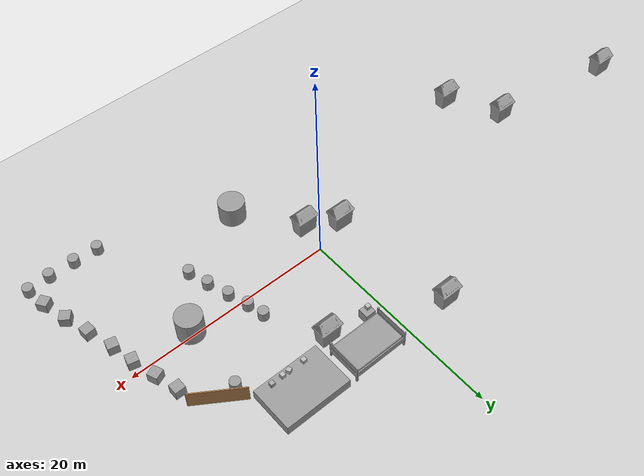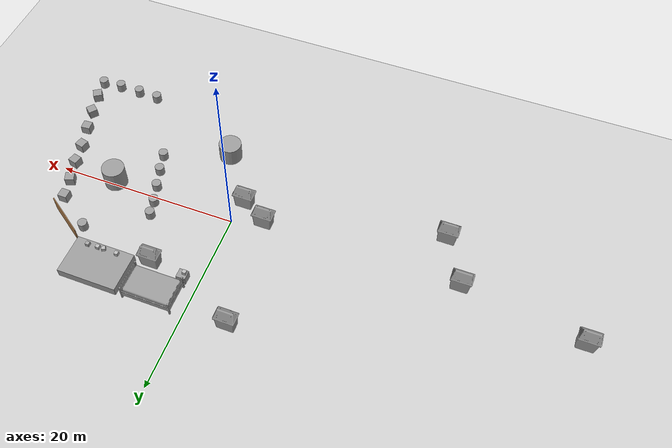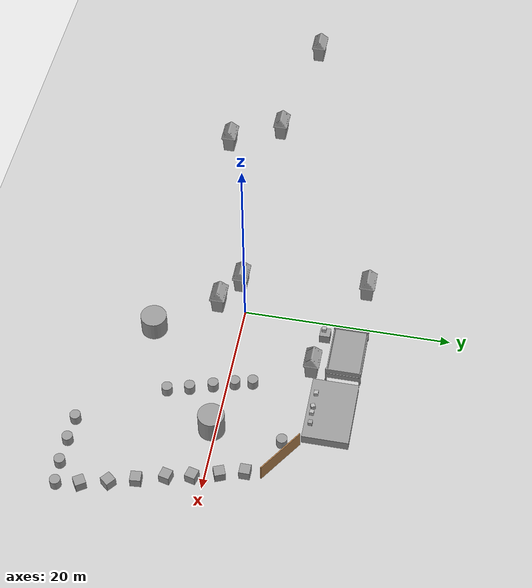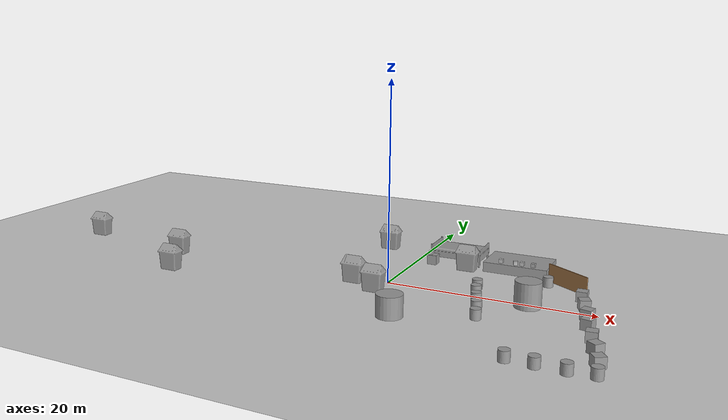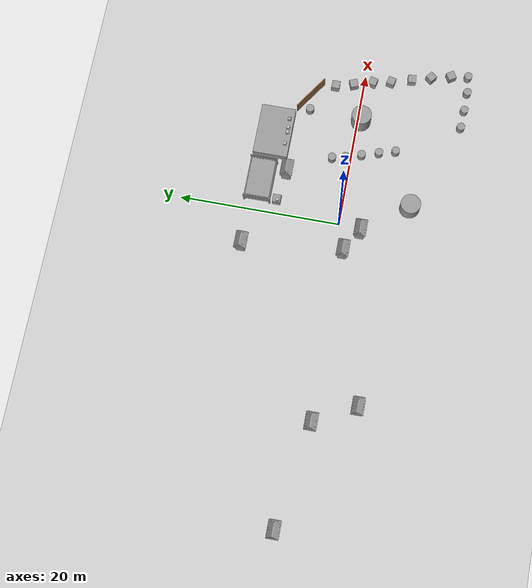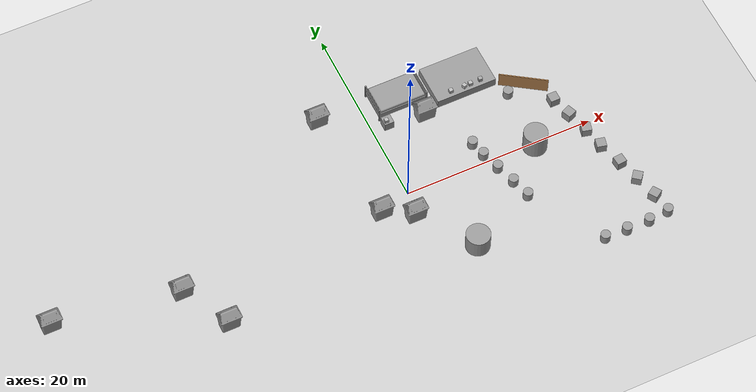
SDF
<sdf version="1.7">
 <world name="default">
  <model name="ground_plane">
   <static>1</static>
   <link name="link">
    <collision name="collision">
     <geometry><plane><normal>0 0 1</normal><size>100 100</size></plane></geometry>
     <surface>
      <contact><collide_bitmask>65535</collide_bitmask></contact>
      <friction><ode><mu>100</mu><mu2>50</mu2></ode></friction>
     </surface>
    </collision>
    <visual name="visual">
     <cast_shadows>0</cast_shadows>
     <geometry><plane><normal>0 0 1</normal><size>100 100</size></plane></geometry>
     <material>
      <script><uri>file://media/materials/scripts/gazebo.material</uri><name>Gazebo/Grey</name></script>
     </material>
    </visual>
   </link>
  </model>
  <model name="tree">
   <link name="link_12">
    <inertial>
     <mass>1</mass>
     <inertia>
      <ixx>0.166667</ixx>
      <ixy>0</ixy>
      <ixz>0</ixz>
      <iyy>0.166667</iyy>
      <iyz>0</iyz>
      <izz>0.166667</izz>
     </inertia>
    </inertial>
    <pose>2.99776 21.1634 0 0 -0 0</pose>
    <visual name="visual">
     <geometry>
      <mesh><uri>/home/teera/dev_ws/src/tratsah/meshes/dae/trash_can.dae</uri><scale>1 1 1</scale></mesh>
     </geometry>
     <material>
      <lighting>1</lighting>
      <script><uri>file://media/materials/scripts/gazebo.material</uri><name>Gazebo/Grey</name></script>
      <shader type="pixel"/>
     </material>
    </visual>
    <collision name="collision">
     <geometry>
      <mesh><uri>/home/teera/dev_ws/src/tratsah/meshes/dae/trash_can.dae</uri><scale>1 1 1</scale></mesh>
     </geometry>
     <surface>
      <friction>
       <ode><mu>1</mu><mu2>1</mu2><fdir1>0 0 0</fdir1><slip1>0</slip1><slip2>0</slip2></ode>
       <torsional>
        <coefficient>1</coefficient>
        <patch_radius>0</patch_radius>
        <surface_radius>0</surface_radius>
        <use_patch_radius>1</use_patch_radius>
        <ode><slip>0</slip></ode>
       </torsional>
      </friction>
      <bounce><restitution_coefficient>0</restitution_coefficient><threshold>1e+06</threshold></bounce>
      <contact>
       <collide_without_contact>0</collide_without_contact>
       <collide_without_contact_bitmask>1</collide_without_contact_bitmask>
       <collide_bitmask>1</collide_bitmask>
       <ode>
        <soft_cfm>0</soft_cfm>
        <soft_erp>0.2</soft_erp>
        <kp>1e+13</kp>
        <kd>1</kd>
        <max_vel>0.01</max_vel>
        <min_depth>0</min_depth>
       </ode>
       <bullet>
        <split_impulse>1</split_impulse>
        <split_impulse_penetration_threshold>-0.01</split_impulse_penetration_threshold>
        <soft_cfm>0</soft_cfm>
        <soft_erp>0.2</soft_erp>
        <kp>1e+13</kp>
        <kd>1</kd>
       </bullet>
      </contact>
     </surface>
    </collision>
   </link>
   <model name="trash_can">
    <link name="link_12">
     <inertial>
      <mass>1</mass>
      <inertia>
       <ixx>0.166667</ixx>
       <ixy>0</ixy>
       <ixz>0</ixz>
       <iyy>0.166667</iyy>
       <iyz>0</iyz>
       <izz>0.166667</izz>
      </inertia>
     </inertial>
     <pose>4e-06 2.8e-05 0 0 -0 0</pose>
     <visual name="visual">
      <geometry>
       <mesh><uri>/home/teera/dev_ws/src/tratsah/meshes/dae/trash_can.dae</uri><scale>1 1 1</scale></mesh>
      </geometry>
      <material>
       <lighting>1</lighting>
       <script><uri>file://media/materials/scripts/gazebo.material</uri><name>Gazebo/Grey</name></script>
       <shader type="pixel"/>
      </material>
     </visual>
     <collision name="collision">
      <geometry>
       <mesh><uri>/home/teera/dev_ws/src/tratsah/meshes/dae/trash_can.dae</uri><scale>1 1 1</scale></mesh>
      </geometry>
      <surface>
       <friction>
        <ode><mu>1</mu><mu2>1</mu2><fdir1>0 0 0</fdir1><slip1>0</slip1><slip2>0</slip2></ode>
        <torsional>
         <coefficient>1</coefficient>
         <patch_radius>0</patch_radius>
         <surface_radius>0</surface_radius>
         <use_patch_radius>1</use_patch_radius>
         <ode><slip>0</slip></ode>
        </torsional>
       </friction>
       <bounce><restitution_coefficient>0</restitution_coefficient><threshold>1e+06</threshold></bounce>
       <contact>
        <collide_without_contact>0</collide_without_contact>
        <collide_without_contact_bitmask>1</collide_without_contact_bitmask>
        <collide_bitmask>1</collide_bitmask>
        <ode>
         <soft_cfm>0</soft_cfm>
         <soft_erp>0.2</soft_erp>
         <kp>1e+13</kp>
         <kd>1</kd>
         <max_vel>0.01</max_vel>
         <min_depth>0</min_depth>
        </ode>
        <bullet>
         <split_impulse>1</split_impulse>
         <split_impulse_penetration_threshold>-0.01</split_impulse_penetration_threshold>
         <soft_cfm>0</soft_cfm>
         <soft_erp>0.2</soft_erp>
         <kp>1e+13</kp>
         <kd>1</kd>
        </bullet>
       </contact>
      </surface>
     </collision>
    </link>
    <static>0</static>
    <pose>13.0667 17.3666 0 0 -0 0</pose>
   </model>
   <model name="trash_can_0">
    <link name="link_12">
     <inertial>
      <mass>1</mass>
      <inertia>
       <ixx>0.166667</ixx>
       <ixy>0</ixy>
       <ixz>0</ixz>
       <iyy>0.166667</iyy>
       <iyz>0</iyz>
       <izz>0.166667</izz>
      </inertia>
     </inertial>
     <pose>4e-06 2.8e-05 0 0 -0 0</pose>
     <visual name="visual">
      <geometry>
       <mesh><uri>/home/teera/dev_ws/src/tratsah/meshes/dae/trash_can.dae</uri><scale>1 1 1</scale></mesh>
      </geometry>
      <material>
       <lighting>1</lighting>
       <script><uri>file://media/materials/scripts/gazebo.material</uri><name>Gazebo/Grey</name></script>
       <shader type="pixel"/>
      </material>
     </visual>
     <collision name="collision">
      <geometry>
       <mesh><uri>/home/teera/dev_ws/src/tratsah/meshes/dae/trash_can.dae</uri><scale>1 1 1</scale></mesh>
      </geometry>
      <surface>
       <friction>
        <ode><mu>1</mu><mu2>1</mu2><fdir1>0 0 0</fdir1><slip1>0</slip1><slip2>0</slip2></ode>
        <torsional>
         <coefficient>1</coefficient>
         <patch_radius>0</patch_radius>
         <surface_radius>0</surface_radius>
         <use_patch_radius>1</use_patch_radius>
         <ode><slip>0</slip></ode>
        </torsional>
       </friction>
       <bounce><restitution_coefficient>0</restitution_coefficient><threshold>1e+06</threshold></bounce>
       <contact>
        <collide_without_contact>0</collide_without_contact>
        <collide_without_contact_bitmask>1</collide_without_contact_bitmask>
        <collide_bitmask>1</collide_bitmask>
        <ode>
         <soft_cfm>0</soft_cfm>
         <soft_erp>0.2</soft_erp>
         <kp>1e+13</kp>
         <kd>1</kd>
         <max_vel>0.01</max_vel>
         <min_depth>0</min_depth>
        </ode>
        <bullet>
         <split_impulse>1</split_impulse>
         <split_impulse_penetration_threshold>-0.01</split_impulse_penetration_threshold>
         <soft_cfm>0</soft_cfm>
         <soft_erp>0.2</soft_erp>
         <kp>1e+13</kp>
         <kd>1</kd>
        </bullet>
       </contact>
      </surface>
     </collision>
    </link>
    <static>0</static>
    <pose>-14.3091 3.77436 0 0 -0 0</pose>
   </model>
   <model name="trash_can_1">
    <link name="link_12">
     <inertial>
      <mass>1</mass>
      <inertia>
       <ixx>0.166667</ixx>
       <ixy>0</ixy>
       <ixz>0</ixz>
       <iyy>0.166667</iyy>
       <iyz>0</iyz>
       <izz>0.166667</izz>
      </inertia>
     </inertial>
     <pose>4e-06 2.8e-05 0 0 -0 0</pose>
     <visual name="visual">
      <geometry>
       <mesh><uri>/home/teera/dev_ws/src/tratsah/meshes/dae/trash_can.dae</uri><scale>1 1 1</scale></mesh>
      </geometry>
      <material>
       <lighting>1</lighting>
       <script><uri>file://media/materials/scripts/gazebo.material</uri><name>Gazebo/Grey</name></script>
       <shader type="pixel"/>
      </material>
     </visual>
     <collision name="collision">
      <geometry>
       <mesh><uri>/home/teera/dev_ws/src/tratsah/meshes/dae/trash_can.dae</uri><scale>1 1 1</scale></mesh>
      </geometry>
      <surface>
       <friction>
        <ode><mu>1</mu><mu2>1</mu2><fdir1>0 0 0</fdir1><slip1>0</slip1><slip2>0</slip2></ode>
        <torsional>
         <coefficient>1</coefficient>
         <patch_radius>0</patch_radius>
         <surface_radius>0</surface_radius>
         <use_patch_radius>1</use_patch_radius>
         <ode><slip>0</slip></ode>
        </torsional>
       </friction>
       <bounce><restitution_coefficient>0</restitution_coefficient><threshold>1e+06</threshold></bounce>
       <contact>
        <collide_without_contact>0</collide_without_contact>
        <collide_without_contact_bitmask>1</collide_without_contact_bitmask>
        <collide_bitmask>1</collide_bitmask>
        <ode>
         <soft_cfm>0</soft_cfm>
         <soft_erp>0.2</soft_erp>
         <kp>1e+13</kp>
         <kd>1</kd>
         <max_vel>0.01</max_vel>
         <min_depth>0</min_depth>
        </ode>
        <bullet>
         <split_impulse>1</split_impulse>
         <split_impulse_penetration_threshold>-0.01</split_impulse_penetration_threshold>
         <soft_cfm>0</soft_cfm>
         <soft_erp>0.2</soft_erp>
         <kp>1e+13</kp>
         <kd>1</kd>
        </bullet>
       </contact>
      </surface>
     </collision>
    </link>
    <static>0</static>
    <pose>7.06906 7.11266 0 0 -0 0</pose>
   </model>
   <model name="trash_can_2">
    <link name="link_12">
     <inertial>
      <mass>1</mass>
      <inertia>
       <ixx>0.166667</ixx>
       <ixy>0</ixy>
       <ixz>0</ixz>
       <iyy>0.166667</iyy>
       <iyz>0</iyz>
       <izz>0.166667</izz>
      </inertia>
     </inertial>
     <pose>4e-06 2.8e-05 0 0 -0 0</pose>
     <visual name="visual">
      <geometry>
       <mesh><uri>/home/teera/dev_ws/src/tratsah/meshes/dae/trash_can.dae</uri><scale>1 1 1</scale></mesh>
      </geometry>
      <material>
       <lighting>1</lighting>
       <script><uri>file://media/materials/scripts/gazebo.material</uri><name>Gazebo/Grey</name></script>
       <shader type="pixel"/>
      </material>
     </visual>
     <collision name="collision">
      <geometry>
       <mesh><uri>/home/teera/dev_ws/src/tratsah/meshes/dae/trash_can.dae</uri><scale>1 1 1</scale></mesh>
      </geometry>
      <surface>
       <friction>
        <ode><mu>1</mu><mu2>1</mu2><fdir1>0 0 0</fdir1><slip1>0</slip1><slip2>0</slip2></ode>
        <torsional>
         <coefficient>1</coefficient>
         <patch_radius>0</patch_radius>
         <surface_radius>0</surface_radius>
         <use_patch_radius>1</use_patch_radius>
         <ode><slip>0</slip></ode>
        </torsional>
       </friction>
       <bounce><restitution_coefficient>0</restitution_coefficient><threshold>1e+06</threshold></bounce>
       <contact>
        <collide_without_contact>0</collide_without_contact>
        <collide_without_contact_bitmask>1</collide_without_contact_bitmask>
        <collide_bitmask>1</collide_bitmask>
        <ode>
         <soft_cfm>0</soft_cfm>
         <soft_erp>0.2</soft_erp>
         <kp>1e+13</kp>
         <kd>1</kd>
         <max_vel>0.01</max_vel>
         <min_depth>0</min_depth>
        </ode>
        <bullet>
         <split_impulse>1</split_impulse>
         <split_impulse_penetration_threshold>-0.01</split_impulse_penetration_threshold>
         <soft_cfm>0</soft_cfm>
         <soft_erp>0.2</soft_erp>
         <kp>1e+13</kp>
         <kd>1</kd>
        </bullet>
       </contact>
      </surface>
     </collision>
    </link>
    <static>0</static>
    <pose>-17.0093 8.86572 0 0 -0 0</pose>
   </model>
   <model name="trash_can_3">
    <link name="link_12">
     <inertial>
      <mass>1</mass>
      <inertia>
       <ixx>0.166667</ixx>
       <ixy>0</ixy>
       <ixz>0</ixz>
       <iyy>0.166667</iyy>
       <iyz>0</iyz>
       <izz>0.166667</izz>
      </inertia>
     </inertial>
     <pose>4e-06 2.8e-05 0 0 -0 0</pose>
     <visual name="visual">
      <geometry>
       <mesh><uri>/home/teera/dev_ws/src/tratsah/meshes/dae/trash_can.dae</uri><scale>1 1 1</scale></mesh>
      </geometry>
      <material>
       <lighting>1</lighting>
       <script><uri>file://media/materials/scripts/gazebo.material</uri><name>Gazebo/Grey</name></script>
       <shader type="pixel"/>
      </material>
     </visual>
     <collision name="collision">
      <geometry>
       <mesh><uri>/home/teera/dev_ws/src/tratsah/meshes/dae/trash_can.dae</uri><scale>1 1 1</scale></mesh>
      </geometry>
      <surface>
       <friction>
        <ode><mu>1</mu><mu2>1</mu2><fdir1>0 0 0</fdir1><slip1>0</slip1><slip2>0</slip2></ode>
        <torsional>
         <coefficient>1</coefficient>
         <patch_radius>0</patch_radius>
         <surface_radius>0</surface_radius>
         <use_patch_radius>1</use_patch_radius>
         <ode><slip>0</slip></ode>
        </torsional>
       </friction>
       <bounce><restitution_coefficient>0</restitution_coefficient><threshold>1e+06</threshold></bounce>
       <contact>
        <collide_without_contact>0</collide_without_contact>
        <collide_without_contact_bitmask>1</collide_without_contact_bitmask>
        <collide_bitmask>1</collide_bitmask>
        <ode>
         <soft_cfm>0</soft_cfm>
         <soft_erp>0.2</soft_erp>
         <kp>1e+13</kp>
         <kd>1</kd>
         <max_vel>0.01</max_vel>
         <min_depth>0</min_depth>
        </ode>
        <bullet>
         <split_impulse>1</split_impulse>
         <split_impulse_penetration_threshold>-0.01</split_impulse_penetration_threshold>
         <soft_cfm>0</soft_cfm>
         <soft_erp>0.2</soft_erp>
         <kp>1e+13</kp>
         <kd>1</kd>
        </bullet>
       </contact>
      </surface>
     </collision>
    </link>
    <static>0</static>
    <pose>4.20413 8.77388 0 0 -0 0</pose>
   </model>
   <model name="trash_can_4">
    <link name="link_12">
     <inertial>
      <mass>1</mass>
      <inertia>
       <ixx>0.166667</ixx>
       <ixy>0</ixy>
       <ixz>0</ixz>
       <iyy>0.166667</iyy>
       <iyz>0</iyz>
       <izz>0.166667</izz>
      </inertia>
     </inertial>
     <pose>4e-06 2.8e-05 0 0 -0 0</pose>
     <visual name="visual">
      <geometry>
       <mesh><uri>/home/teera/dev_ws/src/tratsah/meshes/dae/trash_can.dae</uri><scale>1 1 1</scale></mesh>
      </geometry>
      <material>
       <lighting>1</lighting>
       <script><uri>file://media/materials/scripts/gazebo.material</uri><name>Gazebo/Grey</name></script>
       <shader type="pixel"/>
      </material>
     </visual>
     <collision name="collision">
      <geometry>
       <mesh><uri>/home/teera/dev_ws/src/tratsah/meshes/dae/trash_can.dae</uri><scale>1 1 1</scale></mesh>
      </geometry>
      <surface>
       <friction>
        <ode><mu>1</mu><mu2>1</mu2><fdir1>0 0 0</fdir1><slip1>0</slip1><slip2>0</slip2></ode>
        <torsional>
         <coefficient>1</coefficient>
         <patch_radius>0</patch_radius>
         <surface_radius>0</surface_radius>
         <use_patch_radius>1</use_patch_radius>
         <ode><slip>0</slip></ode>
        </torsional>
       </friction>
       <bounce><restitution_coefficient>0</restitution_coefficient><threshold>1e+06</threshold></bounce>
       <contact>
        <collide_without_contact>0</collide_without_contact>
        <collide_without_contact_bitmask>1</collide_without_contact_bitmask>
        <collide_bitmask>1</collide_bitmask>
        <ode>
         <soft_cfm>0</soft_cfm>
         <soft_erp>0.2</soft_erp>
         <kp>1e+13</kp>
         <kd>1</kd>
         <max_vel>0.01</max_vel>
         <min_depth>0</min_depth>
        </ode>
        <bullet>
         <split_impulse>1</split_impulse>
         <split_impulse_penetration_threshold>-0.01</split_impulse_penetration_threshold>
         <soft_cfm>0</soft_cfm>
         <soft_erp>0.2</soft_erp>
         <kp>1e+13</kp>
         <kd>1</kd>
        </bullet>
       </contact>
      </surface>
     </collision>
    </link>
    <static>0</static>
    <pose>-29.8163 10.8728 0 0 -0 0</pose>
   </model>
   <static>0</static>
   <pose>-7.52959 -9.8007 0.007877 -0 -0 -0</pose>
  </model>
  <model name="blue_box">
   <model name="blue_box">
    <link name="new_link">
     <visual name="top_visual">
      <geometry><mesh><uri>model://blue_box/meshes/blue_box.dae</uri></mesh></geometry>
     </visual>
     <collision name="collision">
      <geometry><box><size>0.4 0.4 0.4</size></box></geometry>
      <origin xyz="0 0 0" rpy="0 0 0"/>
     </collision>
     <inertial>
      <mass>1</mass>
      <inertia><ixx>0.01</ixx><ixy>0</ixy><ixz>0</ixz><iyy>0.01</iyy><iyz>0</iyz><izz>0.01</izz></inertia>
     </inertial>
    </link>
   </model>
   <static>0</static>
   <pose>1.50463 8.00874 1.2 -3.4e-05 1.2e-05 -0.029</pose>
  </model>
  <model name="blue_box_0">
   <link name="new_link">
    <visual name="top_visual">
     <geometry><mesh><uri>model://blue_box/meshes/blue_box.dae</uri></mesh></geometry>
    </visual>
    <collision name="collision">
     <geometry><box><size>0.4 0.4 0.4</size></box></geometry>
     <origin xyz="0 0 0" rpy="0 0 0"/>
    </collision>
    <inertial>
     <mass>1</mass>
     <inertia><ixx>0.01</ixx><ixy>0</ixy><ixz>0</ixz><iyy>0.01</iyy><iyz>0</iyz><izz>0.01</izz></inertia>
    </inertial>
   </link>
   <pose>8.87755 8.46569 1.2 2.1e-05 -0 0.023989</pose>
  </model>
  <model name="green_box_0">
   <link name="new_link">
    <visual name="top_visual">
     <geometry><mesh><uri>model://green_box/meshes/green_box.dae</uri><scale>1 1 1</scale></mesh></geometry>
    </visual>
    <collision name="collision">
     <geometry><box><size>0.4 0.4 0.4</size></box></geometry>
     <origin xyz="0 0 0" rpy="0 0 0"/>
    </collision>
    <inertial>
     <mass>1</mass>
     <inertia><ixx>0.01</ixx><ixy>0</ixy><ixz>0</ixz><iyy>0.01</iyy><iyz>0</iyz><izz>0.01</izz></inertia>
    </inertial>
   </link>
   <pose>10.3679 8.41236 1.2 2.1e-05 -0 0.409241</pose>
  </model>
  <model name="green_box_1">
   <link name="new_link">
    <visual name="top_visual">
     <geometry><mesh><uri>model://red_box/meshes/red_box.dae</uri></mesh></geometry>
    </visual>
    <collision name="collision">
     <geometry><box><size>0.4 0.4 0.4</size></box></geometry>
     <origin xyz="0 0 0" rpy="0 0 0"/>
    </collision>
    <inertial>
     <mass>1</mass>
     <inertia><ixx>0.01</ixx><ixy>0</ixy><ixz>0</ixz><iyy>0.01</iyy><iyz>0</iyz><izz>0.01</izz></inertia>
    </inertial>
   </link>
   <pose>12.1566 8.47956 1.19999 0 2.4e-05 -0.042184</pose>
  </model>
  <model name="blue_box_1">
   <link name="new_link">
    <visual name="top_visual">
     <geometry><mesh><uri>model://blue_box/meshes/blue_box.dae</uri></mesh></geometry>
    </visual>
    <collision name="collision">
     <geometry><box><size>0.4 0.4 0.4</size></box></geometry>
     <origin xyz="0 0 0" rpy="0 0 0"/>
    </collision>
    <inertial>
     <mass>1</mass>
     <inertia><ixx>0.01</ixx><ixy>0</ixy><ixz>0</ixz><iyy>0.01</iyy><iyz>0</iyz><izz>0.01</izz></inertia>
    </inertial>
   </link>
   <pose>11.0299 8.42962 1.2 2.2e-05 0 -0.021269</pose>
  </model>
  <model name="unit_box_1">
   <link name="link">
    <inertial>
     <mass>100</mass>
     <inertia><ixx>164.686</ixx><ixy>0</ixy><ixz>0</ixz><iyy>354.534</iyy><iyz>0</iyz><izz>502.553</izz></inertia>
    </inertial>
    <visual name="visual">
     <geometry><box><size>6.44547 4.33155 1</size></box></geometry>
     <material>
      <script><name>Gazebo/Grey</name><uri>file://media/materials/scripts/gazebo.material</uri></script>
      <shader type="pixel"><normal_map>__default__</normal_map></shader>
     </material>
    </visual>
    <collision name="collision">
     <geometry><box><size>6.44547 4.33155 1</size></box></geometry>
     <surface>
      <friction>
       <ode><mu>1</mu><mu2>1</mu2><fdir1>0 0 0</fdir1><slip1>0</slip1><slip2>0</slip2></ode>
       <torsional>
        <coefficient>1</coefficient>
        <patch_radius>0</patch_radius>
        <surface_radius>0</surface_radius>
        <use_patch_radius>1</use_patch_radius>
        <ode><slip>0</slip></ode>
       </torsional>
      </friction>
      <bounce><restitution_coefficient>0</restitution_coefficient><threshold>1e+06</threshold></bounce>
      <contact>
       <collide_without_contact>0</collide_without_contact>
       <collide_without_contact_bitmask>1</collide_without_contact_bitmask>
       <collide_bitmask>1</collide_bitmask>
       <ode>
        <soft_cfm>0</soft_cfm>
        <soft_erp>0.2</soft_erp>
        <kp>1e+13</kp>
        <kd>1</kd>
        <max_vel>0.01</max_vel>
        <min_depth>0</min_depth>
       </ode>
       <bullet>
        <split_impulse>1</split_impulse>
        <split_impulse_penetration_threshold>-0.01</split_impulse_penetration_threshold>
        <soft_cfm>0</soft_cfm>
        <soft_erp>0.2</soft_erp>
        <kp>1e+13</kp>
        <kd>1</kd>
       </bullet>
      </contact>
     </surface>
    </collision>
   </link>
   <static>0</static>
   <pose>10.3977 10.0716 0.5 0 -0 3e-06</pose>
  </model>
  <model name="unit_box">
   <link name="link">
    <inertial>
     <mass>50</mass>
     <inertia><ixx>8.33333</ixx><ixy>0</ixy><ixz>0</ixz><iyy>8.33333</iyy><iyz>0</iyz><izz>8.33333</izz></inertia>
    </inertial>
    <visual name="visual">
     <geometry><box><size>1 1 1</size></box></geometry>
     <material>
      <script><name>Gazebo/Grey</name><uri>file://media/materials/scripts/gazebo.material</uri></script>
      <shader type="pixel"><normal_map>__default__</normal_map></shader>
     </material>
    </visual>
    <collision name="collision">
     <geometry><box><size>1 1 1</size></box></geometry>
     <surface>
      <friction>
       <ode><mu>1</mu><mu2>1</mu2><fdir1>0 0 0</fdir1><slip1>0</slip1><slip2>0</slip2></ode>
       <torsional>
        <coefficient>1</coefficient>
        <patch_radius>0</patch_radius>
        <surface_radius>0</surface_radius>
        <use_patch_radius>1</use_patch_radius>
        <ode><slip>0</slip></ode>
       </torsional>
      </friction>
      <bounce><restitution_coefficient>0</restitution_coefficient><threshold>1e+06</threshold></bounce>
      <contact>
       <collide_without_contact>0</collide_without_contact>
       <collide_without_contact_bitmask>1</collide_without_contact_bitmask>
       <collide_bitmask>1</collide_bitmask>
       <ode>
        <soft_cfm>0</soft_cfm>
        <soft_erp>0.2</soft_erp>
        <kp>1e+13</kp>
        <kd>1</kd>
        <max_vel>0.01</max_vel>
        <min_depth>0</min_depth>
       </ode>
       <bullet>
        <split_impulse>1</split_impulse>
        <split_impulse_penetration_threshold>-0.01</split_impulse_penetration_threshold>
        <soft_cfm>0</soft_cfm>
        <soft_erp>0.2</soft_erp>
        <kp>1e+13</kp>
        <kd>1</kd>
       </bullet>
      </contact>
     </surface>
    </collision>
   </link>
   <static>0</static>
   <pose>1.69663 8.14969 0.5 0 0 -7e-06</pose>
  </model>
  <model name="fence">
   <static>1</static>
   <link name="link">
    <pose>0 0 0.915 0 -0 0</pose>
    <collision name="collision"><geometry><box><size>0.1 5 1.83</size></box></geometry></collision>
    <visual name="visual">
     <cast_shadows>0</cast_shadows>
     <geometry><box><size>0.1 5 1.83</size></box></geometry>
     <material>
      <script>
       <uri>https://fuel.ignitionrobotics.org/1.0/athackst/models/fence/2/files/materials/scripts</uri>
       <uri>https://fuel.ignitionrobotics.org/1.0/athackst/models/fence/2/files/materials/textures</uri>
       <name>Fence/WoodBoarding</name>
      </script>
     </material>
    </visual>
   </link>
   <pose>15.9688 6.41554 0 0 -0 0.978236</pose>
  </model>
  <model name="BED_4">
   <link name="link_1">
    <inertial>
     <mass>100</mass>
     <inertia><ixx>10</ixx><ixy>0</ixy><ixz>0</ixz><iyy>10</iyy><iyz>0</iyz><izz>10</izz></inertia>
    </inertial>
    <pose>-1e-06 -0 0 0 -0 0</pose>
    <visual name="visual">
     <geometry>
      <mesh><uri>/home/teera/dev_ws/src/tratsah/meshes/dae/bed.dae</uri><scale>1 1 1</scale></mesh>
     </geometry>
     <material>
      <lighting>1</lighting>
      <script><uri>file://media/materials/scripts/gazebo.material</uri><name>Gazebo/Grey</name></script>
      <shader type="pixel"><normal_map>__default__</normal_map></shader>
     </material>
    </visual>
    <collision name="collision">
     <geometry>
      <mesh><uri>/home/teera/dev_ws/src/tratsah/meshes/dae/bed.dae</uri><scale>1 1 1</scale></mesh>
     </geometry>
     <surface>
      <friction>
       <ode><mu>1</mu><mu2>1</mu2><fdir1>0 0 0</fdir1><slip1>0</slip1><slip2>0</slip2></ode>
       <torsional>
        <coefficient>1</coefficient>
        <patch_radius>0</patch_radius>
        <surface_radius>0</surface_radius>
        <use_patch_radius>1</use_patch_radius>
        <ode><slip>0</slip></ode>
       </torsional>
      </friction>
      <bounce><restitution_coefficient>0</restitution_coefficient><threshold>1e+06</threshold></bounce>
      <contact>
       <collide_without_contact>0</collide_without_contact>
       <collide_without_contact_bitmask>1</collide_without_contact_bitmask>
       <collide_bitmask>1</collide_bitmask>
       <ode>
        <soft_cfm>0</soft_cfm>
        <soft_erp>0.2</soft_erp>
        <kp>1e+13</kp>
        <kd>1</kd>
        <max_vel>0.01</max_vel>
        <min_depth>0</min_depth>
       </ode>
       <bullet>
        <split_impulse>1</split_impulse>
        <split_impulse_penetration_threshold>-0.01</split_impulse_penetration_threshold>
        <soft_cfm>0</soft_cfm>
        <soft_erp>0.2</soft_erp>
        <kp>1e+13</kp>
        <kd>1</kd>
       </bullet>
      </contact>
     </surface>
    </collision>
   </link>
   <static>0</static>
   <pose>3.91879 10.8247 -0.005271 -0.000184 -0.000113 6.5e-05</pose>
  </model>
  <model name="unit_cylinder">
   <pose>14.1588 6.21554 0.5 0 -0 0</pose>
   <link name="link">
    <inertial>
     <mass>1</mass>
     <inertia><ixx>0.145833</ixx><ixy>0</ixy><ixz>0</ixz><iyy>0.145833</iyy><iyz>0</iyz><izz>0.125</izz></inertia>
    </inertial>
    <collision name="collision">
     <geometry><cylinder><radius>0.5</radius><length>1</length></cylinder></geometry>
    </collision>
    <visual name="visual">
     <geometry><cylinder><radius>0.5</radius><length>1</length></cylinder></geometry>
     <material>
      <script><name>Gazebo/Grey</name><uri>file://media/materials/scripts/gazebo.material</uri></script>
     </material>
    </visual>
   </link>
  </model>
  <model name="unit_box_7">
   <pose>17.8907 3.56344 0.5 0 -0 0</pose>
   <link name="link">
    <inertial>
     <mass>1</mass>
     <inertia>
      <ixx>0.166667</ixx>
      <ixy>0</ixy>
      <ixz>0</ixz>
      <iyy>0.166667</iyy>
      <iyz>0</iyz>
      <izz>0.166667</izz>
     </inertia>
    </inertial>
    <collision name="collision"><geometry><box><size>1 1 1</size></box></geometry></collision>
    <visual name="visual">
     <geometry><box><size>1 1 1</size></box></geometry>
     <material>
      <script><name>Gazebo/Grey</name><uri>file://media/materials/scripts/gazebo.material</uri></script>
     </material>
    </visual>
   </link>
  </model>
  <model name="unit_box_8">
   <pose>18.4838 1.33745 0.5 0 -0 0.383229</pose>
   <link name="link">
    <inertial>
     <mass>1</mass>
     <inertia>
      <ixx>0.166667</ixx>
      <ixy>0</ixy>
      <ixz>0</ixz>
      <iyy>0.166667</iyy>
      <iyz>0</iyz>
      <izz>0.166667</izz>
     </inertia>
    </inertial>
    <collision name="collision"><geometry><box><size>1 1 1</size></box></geometry></collision>
    <visual name="visual">
     <geometry><box><size>1 1 1</size></box></geometry>
     <material>
      <script><name>Gazebo/Grey</name><uri>file://media/materials/scripts/gazebo.material</uri></script>
     </material>
    </visual>
   </link>
  </model>
  <model name="unit_box_9">
   <pose>19.1705 -1.01179 0.5 0 0 -0.243878</pose>
   <link name="link">
    <inertial>
     <mass>1</mass>
     <inertia>
      <ixx>0.166667</ixx>
      <ixy>0</ixy>
      <ixz>0</ixz>
      <iyy>0.166667</iyy>
      <iyz>0</iyz>
      <izz>0.166667</izz>
     </inertia>
    </inertial>
    <collision name="collision"><geometry><box><size>1 1 1</size></box></geometry></collision>
    <visual name="visual">
     <geometry><box><size>1 1 1</size></box></geometry>
     <material>
      <script><name>Gazebo/Grey</name><uri>file://media/materials/scripts/gazebo.material</uri></script>
     </material>
    </visual>
   </link>
  </model>
  <model name="unit_box_10">
   <pose>19.6265 -3.28533 0.5 0 0 -0.228636</pose>
   <link name="link">
    <inertial>
     <mass>1</mass>
     <inertia>
      <ixx>0.166667</ixx>
      <ixy>0</ixy>
      <ixz>0</ixz>
      <iyy>0.166667</iyy>
      <iyz>0</iyz>
      <izz>0.166667</izz>
     </inertia>
    </inertial>
    <collision name="collision"><geometry><box><size>1 1 1</size></box></geometry></collision>
    <visual name="visual">
     <geometry><box><size>1 1 1</size></box></geometry>
     <material>
      <script><name>Gazebo/Grey</name><uri>file://media/materials/scripts/gazebo.material</uri></script>
     </material>
    </visual>
   </link>
  </model>
  <model name="unit_box_11">
   <pose>20.3937 -5.8404 0.5 0 -0 0.084817</pose>
   <link name="link">
    <inertial>
     <mass>1</mass>
     <inertia>
      <ixx>0.166667</ixx>
      <ixy>0</ixy>
      <ixz>0</ixz>
      <iyy>0.166667</iyy>
      <iyz>0</iyz>
      <izz>0.166667</izz>
     </inertia>
    </inertial>
    <collision name="collision"><geometry><box><size>1 1 1</size></box></geometry></collision>
    <visual name="visual">
     <geometry><box><size>1 1 1</size></box></geometry>
     <material>
      <script><name>Gazebo/Grey</name><uri>file://media/materials/scripts/gazebo.material</uri></script>
     </material>
    </visual>
   </link>
  </model>
  <model name="unit_box_12">
   <pose>21.0916 -8.20595 0.5 0 0 -0.68048</pose>
   <link name="link">
    <inertial>
     <mass>1</mass>
     <inertia>
      <ixx>0.166667</ixx>
      <ixy>0</ixy>
      <ixz>0</ixz>
      <iyy>0.166667</iyy>
      <iyz>0</iyz>
      <izz>0.166667</izz>
     </inertia>
    </inertial>
    <collision name="collision"><geometry><box><size>1 1 1</size></box></geometry></collision>
    <visual name="visual">
     <geometry><box><size>1 1 1</size></box></geometry>
     <material>
      <script><name>Gazebo/Grey</name><uri>file://media/materials/scripts/gazebo.material</uri></script>
     </material>
    </visual>
   </link>
  </model>
  <model name="unit_box_13">
   <pose>21.7011 -10.6756 0.5 0 -0 0.569949</pose>
   <link name="link">
    <inertial>
     <mass>1</mass>
     <inertia>
      <ixx>0.166667</ixx>
      <ixy>0</ixy>
      <ixz>0</ixz>
      <iyy>0.166667</iyy>
      <iyz>0</iyz>
      <izz>0.166667</izz>
     </inertia>
    </inertial>
    <collision name="collision"><geometry><box><size>1 1 1</size></box></geometry></collision>
    <visual name="visual">
     <geometry><box><size>1 1 1</size></box></geometry>
     <material>
      <script><name>Gazebo/Grey</name><uri>file://media/materials/scripts/gazebo.material</uri></script>
     </material>
    </visual>
   </link>
  </model>
  <model name="unit_cylinder_0">
   <pose>22.0211 -12.8192 0.5 0 -0 0</pose>
   <link name="link">
    <inertial>
     <mass>1</mass>
     <inertia><ixx>0.145833</ixx><ixy>0</ixy><ixz>0</ixz><iyy>0.145833</iyy><iyz>0</iyz><izz>0.125</izz></inertia>
    </inertial>
    <collision name="collision">
     <geometry><cylinder><radius>0.5</radius><length>1</length></cylinder></geometry>
    </collision>
    <visual name="visual">
     <geometry><cylinder><radius>0.5</radius><length>1</length></cylinder></geometry>
     <material>
      <script><name>Gazebo/Grey</name><uri>file://media/materials/scripts/gazebo.material</uri></script>
     </material>
    </visual>
   </link>
  </model>
  <model name="unit_cylinder_1">
   <pose>19.8598 -13.0221 0.5 0 -0 0</pose>
   <link name="link">
    <inertial>
     <mass>1</mass>
     <inertia><ixx>0.145833</ixx><ixy>0</ixy><ixz>0</ixz><iyy>0.145833</iyy><iyz>0</iyz><izz>0.125</izz></inertia>
    </inertial>
    <collision name="collision">
     <geometry><cylinder><radius>0.5</radius><length>1</length></cylinder></geometry>
    </collision>
    <visual name="visual">
     <geometry><cylinder><radius>0.5</radius><length>1</length></cylinder></geometry>
     <material>
      <script><name>Gazebo/Grey</name><uri>file://media/materials/scripts/gazebo.material</uri></script>
     </material>
    </visual>
   </link>
  </model>
  <model name="unit_cylinder_2">
   <pose>17.4243 -12.9847 0.5 0 -0 0</pose>
   <link name="link">
    <inertial>
     <mass>1</mass>
     <inertia><ixx>0.145833</ixx><ixy>0</ixy><ixz>0</ixz><iyy>0.145833</iyy><iyz>0</iyz><izz>0.125</izz></inertia>
    </inertial>
    <collision name="collision">
     <geometry><cylinder><radius>0.5</radius><length>1</length></cylinder></geometry>
    </collision>
    <visual name="visual">
     <geometry><cylinder><radius>0.5</radius><length>1</length></cylinder></geometry>
     <material>
      <script><name>Gazebo/Grey</name><uri>file://media/materials/scripts/gazebo.material</uri></script>
     </material>
    </visual>
   </link>
  </model>
  <model name="unit_cylinder_3">
   <pose>15.0851 -12.8902 0.5 0 -0 0</pose>
   <link name="link">
    <inertial>
     <mass>1</mass>
     <inertia><ixx>0.145833</ixx><ixy>0</ixy><ixz>0</ixz><iyy>0.145833</iyy><iyz>0</iyz><izz>0.125</izz></inertia>
    </inertial>
    <collision name="collision">
     <geometry><cylinder><radius>0.5</radius><length>1</length></cylinder></geometry>
    </collision>
    <visual name="visual">
     <geometry><cylinder><radius>0.5</radius><length>1</length></cylinder></geometry>
     <material>
      <script><name>Gazebo/Grey</name><uri>file://media/materials/scripts/gazebo.material</uri></script>
     </material>
    </visual>
   </link>
  </model>
  <model name="unit_cylinder_4">
   <pose>10.4967 -5.33772 0.5 0 -0 0</pose>
   <link name="link">
    <inertial>
     <mass>1</mass>
     <inertia><ixx>0.145833</ixx><ixy>0</ixy><ixz>0</ixz><iyy>0.145833</iyy><iyz>0</iyz><izz>0.125</izz></inertia>
    </inertial>
    <collision name="collision">
     <geometry><cylinder><radius>0.5</radius><length>1</length></cylinder></geometry>
    </collision>
    <visual name="visual">
     <geometry><cylinder><radius>0.5</radius><length>1</length></cylinder></geometry>
     <material>
      <script><name>Gazebo/Grey</name><uri>file://media/materials/scripts/gazebo.material</uri></script>
     </material>
    </visual>
   </link>
  </model>
  <model name="unit_cylinder_5">
   <pose>9.9378 -3.30545 0.5 0 -0 0</pose>
   <link name="link">
    <inertial>
     <mass>1</mass>
     <inertia><ixx>0.145833</ixx><ixy>0</ixy><ixz>0</ixz><iyy>0.145833</iyy><iyz>0</iyz><izz>0.125</izz></inertia>
    </inertial>
    <collision name="collision">
     <geometry><cylinder><radius>0.5</radius><length>1</length></cylinder></geometry>
    </collision>
    <visual name="visual">
     <geometry><cylinder><radius>0.5</radius><length>1</length></cylinder></geometry>
     <material>
      <script><name>Gazebo/Grey</name><uri>file://media/materials/scripts/gazebo.material</uri></script>
     </material>
    </visual>
   </link>
  </model>
  <model name="unit_cylinder_6">
   <pose>9.27392 -1.20993 0.5 0 -0 0</pose>
   <link name="link">
    <inertial>
     <mass>1</mass>
     <inertia><ixx>0.145833</ixx><ixy>0</ixy><ixz>0</ixz><iyy>0.145833</iyy><iyz>0</iyz><izz>0.125</izz></inertia>
    </inertial>
    <collision name="collision">
     <geometry><cylinder><radius>0.5</radius><length>1</length></cylinder></geometry>
    </collision>
    <visual name="visual">
     <geometry><cylinder><radius>0.5</radius><length>1</length></cylinder></geometry>
     <material>
      <script><name>Gazebo/Grey</name><uri>file://media/materials/scripts/gazebo.material</uri></script>
     </material>
    </visual>
   </link>
  </model>
  <model name="unit_cylinder_7">
   <pose>8.66013 0.730612 0.5 0 -0 0</pose>
   <link name="link">
    <inertial>
     <mass>1</mass>
     <inertia><ixx>0.145833</ixx><ixy>0</ixy><ixz>0</ixz><iyy>0.145833</iyy><iyz>0</iyz><izz>0.125</izz></inertia>
    </inertial>
    <collision name="collision">
     <geometry><cylinder><radius>0.5</radius><length>1</length></cylinder></geometry>
    </collision>
    <visual name="visual">
     <geometry><cylinder><radius>0.5</radius><length>1</length></cylinder></geometry>
     <material>
      <script><name>Gazebo/Grey</name><uri>file://media/materials/scripts/gazebo.material</uri></script>
     </material>
    </visual>
   </link>
  </model>
  <model name="unit_cylinder_8">
   <pose>8.27312 2.37058 0.5 0 -0 0</pose>
   <link name="link">
    <inertial>
     <mass>1</mass>
     <inertia><ixx>0.145833</ixx><ixy>0</ixy><ixz>0</ixz><iyy>0.145833</iyy><iyz>0</iyz><izz>0.125</izz></inertia>
    </inertial>
    <collision name="collision">
     <geometry><cylinder><radius>0.5</radius><length>1</length></cylinder></geometry>
    </collision>
    <visual name="visual">
     <geometry><cylinder><radius>0.5</radius><length>1</length></cylinder></geometry>
     <material>
      <script><name>Gazebo/Grey</name><uri>file://media/materials/scripts/gazebo.material</uri></script>
     </material>
    </visual>
   </link>
  </model>
  <model name="unit_cylinder_9">
   <link name="link">
    <inertial>
     <mass>15224.2</mass>
     <inertia><ixx>13700.4</ixx><ixy>0</ixy><ixz>0</ixz><iyy>13700.4</iyy><iyz>0</iyz><izz>11615.9</izz></inertia>
    </inertial>
    <visual name="visual">
     <geometry><cylinder><radius>1.23531</radius><length>2.49419</length></cylinder></geometry>
     <material>
      <script><name>Gazebo/Grey</name><uri>file://media/materials/scripts/gazebo.material</uri></script>
      <shader type="pixel"><normal_map>__default__</normal_map></shader>
     </material>
    </visual>
    <collision name="collision">
     <geometry><cylinder><radius>1.23531</radius><length>2.49419</length></cylinder></geometry>
     <surface>
      <friction>
       <ode><mu>1</mu><mu2>1</mu2><fdir1>0 0 0</fdir1><slip1>0</slip1><slip2>0</slip2></ode>
       <torsional>
        <coefficient>1</coefficient>
        <patch_radius>0</patch_radius>
        <surface_radius>0</surface_radius>
        <use_patch_radius>1</use_patch_radius>
        <ode><slip>0</slip></ode>
       </torsional>
      </friction>
      <bounce><restitution_coefficient>0</restitution_coefficient><threshold>1e+06</threshold></bounce>
      <contact>
       <collide_without_contact>0</collide_without_contact>
       <collide_without_contact_bitmask>1</collide_without_contact_bitmask>
       <collide_bitmask>1</collide_bitmask>
       <ode>
        <soft_cfm>0</soft_cfm>
        <soft_erp>0.2</soft_erp>
        <kp>1e+13</kp>
        <kd>1</kd>
        <max_vel>0.01</max_vel>
        <min_depth>0</min_depth>
       </ode>
       <bullet>
        <split_impulse>1</split_impulse>
        <split_impulse_penetration_threshold>-0.01</split_impulse_penetration_threshold>
        <soft_cfm>0</soft_cfm>
        <soft_erp>0.2</soft_erp>
        <kp>1e+13</kp>
        <kd>1</kd>
       </bullet>
      </contact>
     </surface>
    </collision>
   </link>
   <static>0</static>
   <pose>13.8073 -0.373374 1.27442 0 -0 0</pose>
  </model>
  <model name="unit_cylinder_10">
   <link name="link">
    <inertial>
     <mass>12978</mass>
     <inertia><ixx>9787.37</ixx><ixy>0</ixy><ixz>0</ixz><iyy>9787.37</iyy><iyz>0</iyz><izz>10013.9</izz></inertia>
    </inertial>
    <visual name="visual">
     <geometry><cylinder><radius>1.24226</radius><length>2.10242</length></cylinder></geometry>
     <material>
      <script><name>Gazebo/Grey</name><uri>file://media/materials/scripts/gazebo.material</uri></script>
      <shader type="pixel"><normal_map>__default__</normal_map></shader>
     </material>
    </visual>
    <collision name="collision">
     <geometry><cylinder><radius>1.24226</radius><length>2.10242</length></cylinder></geometry>
     <surface>
      <friction>
       <ode><mu>1</mu><mu2>1</mu2><fdir1>0 0 0</fdir1><slip1>0</slip1><slip2>0</slip2></ode>
       <torsional>
        <coefficient>1</coefficient>
        <patch_radius>0</patch_radius>
        <surface_radius>0</surface_radius>
        <use_patch_radius>1</use_patch_radius>
        <ode><slip>0</slip></ode>
       </torsional>
      </friction>
      <bounce><restitution_coefficient>0</restitution_coefficient><threshold>1e+06</threshold></bounce>
      <contact>
       <collide_without_contact>0</collide_without_contact>
       <collide_without_contact_bitmask>1</collide_without_contact_bitmask>
       <collide_bitmask>1</collide_bitmask>
       <ode>
        <soft_cfm>0</soft_cfm>
        <soft_erp>0.2</soft_erp>
        <kp>1e+13</kp>
        <kd>1</kd>
        <max_vel>0.01</max_vel>
        <min_depth>0</min_depth>
       </ode>
       <bullet>
        <split_impulse>1</split_impulse>
        <split_impulse_penetration_threshold>-0.01</split_impulse_penetration_threshold>
        <soft_cfm>0</soft_cfm>
        <soft_erp>0.2</soft_erp>
        <kp>1e+13</kp>
        <kd>1</kd>
       </bullet>
      </contact>
     </surface>
    </collision>
   </link>
   <static>0</static>
   <pose>3.57388 -8.21597 1.08029 0 -0 0</pose>
  </model>
 </world>
</sdf>
